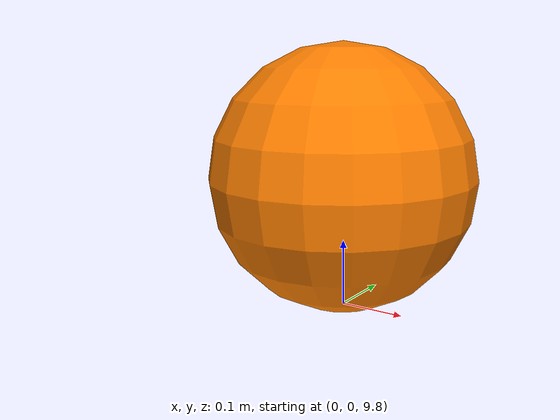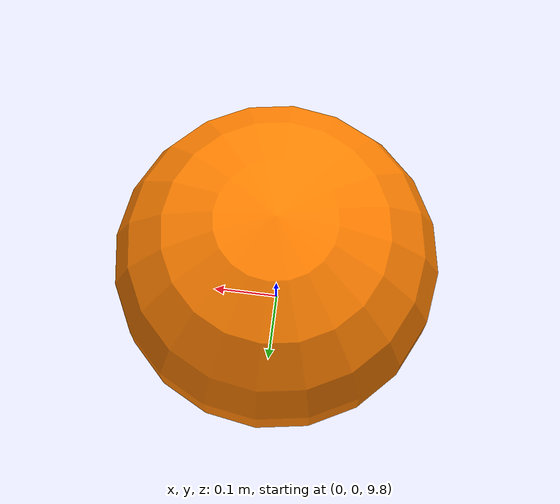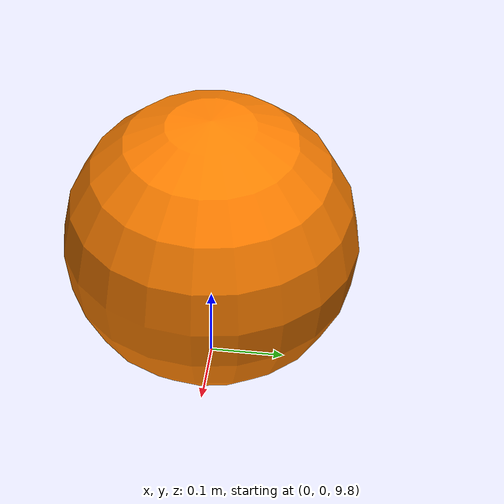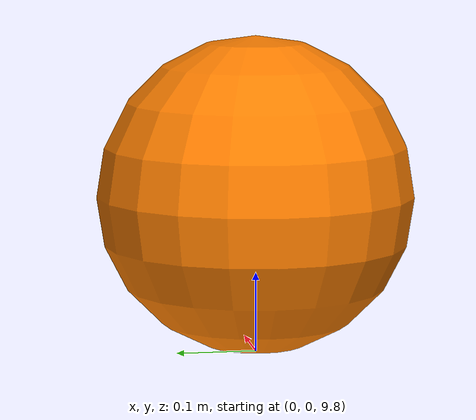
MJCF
<mujoco model="horizontal_launch_velocity_test">
    <option timestep ="0.005" gravity="0 0 -9.81"/>
    <worldbody>

        <!-- Ball -->
        <body name="object_1" pos="0 0 10">
            <geom type="sphere" size="0.2" density="10" rgba="1 0.5 0 1"/>
            <joint name="object_1_joint" type="free"/>
        </body>

        <!-- Plane -->
        <body name="object_2" pos="0 0 0">
            <geom type="plane" size="30 30 0.1" rgba="0.7 0.7 0.7 1" friction="1 1 1"/>
        </body>
    </worldbody>
</mujoco>
